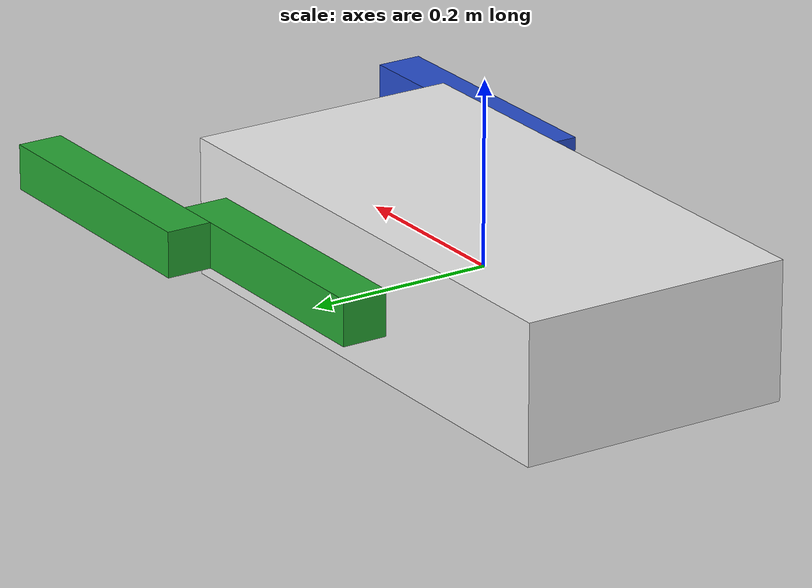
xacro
<?xml version="1.0"?>

<robot name="two_link" xmlns:xacro="http://ros.org/wiki/xacro">

  <!-- Property Definition: Referred to using ${property_name} -->
  <xacro:property name="box_name" value="robot" />
  <xacro:property name="mass" value="0.5" />

  <!-- Macro for the inertia of a box -->
  <xacro:macro name="box_inertia" params="x y z mass">
    <inertia ixx="${0.0833333 * mass * (y*y + z*z)}" ixy="0.0" ixz="0.0"
      iyy="${0.0833333 * mass * (x*x + z*z)}" iyz="0.0"
      izz="${0.0833333 * mass * (x*x + y*y)}" />
  </xacro:macro>

    <!-- Macro for the inertial properties of a box -->
  <xacro:macro name="box_inertial" params="x y z mass *origin">
    <inertial>
      <mass value="${mass}" />
      <xacro:insert_block name="origin" />
      <xacro:box_inertia x="${x}" y="${y}" z="${z}" mass="${mass}" />
    </inertial>
  </xacro:macro>

<!-- Link Definitions (Virtual Link) -->
<link name="${box_name}/base_link" />

<!-- Link Definitions (Actual Link) -->
<link name="${box_name}/box">
  <!-- Inertial block (uses box_inertial macro) -->
  <xacro:box_inertial x="0.6" y="0.3" z="0.15" mass="${mass}">
    <origin xyz="0 0 0" />
  </xacro:box_inertial>

  <!-- Visual block -->
  <visual>
    <origin xyz="0 0 0" rpy="0 0 0" />
    <geometry>
      <box size="0.6 0.3 0.15"/>
    </geometry>
  </visual>

  <!-- Collision block -->
  <collision>
    <origin xyz="0 0 0" rpy="0 0 0" />
    <geometry>
      <box size="0.6 0.3 0.15"/>
     </geometry>
  </collision>
</link>

  <!-- Gazebo specific properties for the box link -->
  <gazebo reference="${box_name}/box">
    <material>Gazebo/White</material>
      <mu1>5.01</mu1>
      <mu2>5.01</mu2>
  </gazebo>

  <!-- Joint between the virtual link and the actual link -->
  <joint name="${box_name}/base_joint" type="fixed">
    <origin xyz="0.0 0 0.0" rpy="0 0 0" />
    <parent link="${box_name}/base_link" />
    <child link="${box_name}/box" />
  </joint>

  <link name="${box_name}/arm1">
    <!-- Visual block -->
    <visual>
      <origin xyz="0.1 0 0" rpy="0 0 0" />
      <geometry>
        <box size="0.3 0.05 0.05"/>
      </geometry>
    </visual>
    <!-- Collision block -->
    <collision>
      <origin xyz="0.1 0 0" rpy="0 0 0" />
      <geometry>
        <box size="0.3 0.05 0.05"/>
      </geometry>
    </collision>
    <!-- Inertial block (uses box_inertial macro) -->
    <xacro:box_inertial x="0.3" y="0.05" z="0.05" mass="${mass}">
      <origin xyz="0.1 0 0" />
    </xacro:box_inertial>
  </link>
  <link name="${box_name}/arm11">
    <!-- Visual block -->
    <visual>
      <origin xyz="0.125 0 0" rpy="0 0 0" />
      <geometry>
        <box size="0.3 0.05 0.05"/>
      </geometry>
    </visual>
    <!-- Collision block -->
    <collision>
      <origin xyz="0.125 0 0" rpy="0 0 0" />
      <geometry>
        <box size="0.3 0.05 0.05"/>
      </geometry>
    </collision>
    <!-- Inertial block (uses box_inertial macro) -->
    <xacro:box_inertial x="0.3" y="0.05" z="0.05" mass="${mass}">
      <origin xyz="0.125 0 0" />
    </xacro:box_inertial>
  </link>

  <link name="${box_name}/arm2">
    <!-- Visual block -->
    <visual>
      <origin xyz="0.1 0 0" rpy="0 0 0" />
      <geometry>
        <box size="0.3 0.05 0.05"/>
      </geometry>
    </visual>
    <!-- Collision block -->
    <collision>
      <origin xyz="0.1 0 0" rpy="0 0 0" />
      <geometry>
        <box size="0.3 0.05 0.05"/>
      </geometry>
    </collision>
    <!-- Inertial block (uses box_inertial macro) -->
    <xacro:box_inertial x="0.3" y="0.05" z="0.05" mass="${mass}">
      <origin xyz="0.1 0 0" />
    </xacro:box_inertial>
  </link>
  <link name="${box_name}/arm22">
    <!-- Visual block -->
    <visual>
      <origin xyz="0.125 0 0" rpy="0 0 0" />
      <geometry>
        <box size="0.3 0.05 0.05"/>
      </geometry>
    </visual>
    <!-- Collision block -->
    <collision>
      <origin xyz="0.125 0 0" rpy="0 0 0" />
      <geometry>
        <box size="0.3 0.05 0.05"/>
      </geometry>
    </collision>
    <!-- Inertial block (uses box_inertial macro) -->
    <xacro:box_inertial x="0.3" y="0.05" z="0.05" mass="${mass}">
      <origin xyz="0.125 0 0" />
    </xacro:box_inertial>
  </link>

  <!-- Joint between the first link and the new link -->
  <joint name="${box_name}/link_joint1" type="revolute">
    <origin xyz="0.0 -0.175 -0.0" rpy="0 0 0" />
    <parent link="${box_name}/box" />
    <child link="${box_name}/arm1" />
    <axis xyz="0 -1 0" />
    <limit lower="${-pi}" upper="${pi}" effort="50.01" velocity="1.01" />
    <dynamics damping="0.0" friction="0.1"/>
  </joint>
  <!-- Joint between the first link and the new link -->
  <joint name="${box_name}/link_joint11" type="revolute">
    <origin xyz="0.225 -0.05 0.0" rpy="0 0 0" />
    <parent link="${box_name}/arm1" />
    <child link="${box_name}/arm11" />
    <axis xyz="0 -1 0" />
    <limit lower="${-pi}" upper="${pi}" effort="50.01" velocity="1.01" />
    <dynamics damping="0.0" friction="0.1"/>
  </joint>
  <!-- Gazebo specific properties for the arm link -->
  <gazebo reference="${box_name}/arm1">
    <material>Gazebo/Blue</material>
  </gazebo>
  <!-- Gazebo specific properties for the arm link -->
  <gazebo reference="${box_name}/arm11">
    <material>Gazebo/Blue</material>
  </gazebo>

    <!-- Joint between the first link and the new link -->
  <joint name="${box_name}/link_joint2" type="revolute">
    <origin xyz="0.0 0.175 0.0" rpy="0 0 0" />
    <parent link="${box_name}/box" />
    <child link="${box_name}/arm2" />
    <axis xyz="0 -1 0" />
    <limit lower="${-pi}" upper="${pi}" effort="50.01" velocity="1.01" />
    <dynamics damping="0.0" friction="0.1"/>
  </joint>
  <!-- Joint between the first link and the new link -->
  <joint name="${box_name}/link_joint22" type="revolute">
    <origin xyz="0.225 0.05 0.0" rpy="0 0 0" />
    <parent link="${box_name}/arm2" />
    <child link="${box_name}/arm22" />
    <axis xyz="0 -1 0" />
    <limit lower="${-pi}" upper="${pi}" effort="50.01" velocity="1.01" />
    <dynamics damping="0.0" friction="0.1"/>
  </joint>
  <!-- Gazebo specific properties for the arm link -->
  <gazebo reference="${box_name}/arm2">
    <material>Gazebo/Green</material>
  </gazebo>

  <!-- Gazebo specific properties for the arm link -->
  <gazebo reference="${box_name}/arm22">
    <material>Gazebo/Green</material>
  </gazebo>

  <!-- Interface the plugin with the movable joints -->
  <ros2_control name="GazeboSystem" type="system">
    <hardware>
      <plugin>gz_ros2_control/GazeboSimSystem</plugin>
    </hardware>
    <joint name="${box_name}/link_joint1">
      <command_interface name="position">
        <param name="min">-15</param>
        <param name="max">15</param>
      </command_interface>
      <state_interface name="position">
        <param name="initial_value">1.0</param>
      </state_interface>
      <state_interface name="velocity"/>
      <state_interface name="effort"/>
    </joint>

    <joint name="${box_name}/link_joint2">
      <command_interface name="position">
        <param name="min">-15</param>
        <param name="max">15</param>
      </command_interface>
      <state_interface name="position">
        <param name="initial_value">1.0</param>
      </state_interface>
      <state_interface name="velocity"/>
      <state_interface name="effort"/>
    </joint>

    <joint name="${box_name}/link_joint11">
      <command_interface name="position">
        <param name="min">-15</param>
        <param name="max">15</param>
      </command_interface>
      <state_interface name="position">
        <param name="initial_value">1.0</param>
      </state_interface>
      <state_interface name="velocity"/>
      <state_interface name="effort"/>
    </joint>

    <joint name="${box_name}/link_joint22">
      <command_interface name="position">
        <param name="min">-15</param>
        <param name="max">15</param>
      </command_interface>
      <state_interface name="position">
        <param name="initial_value">1.0</param>
      </state_interface>
      <state_interface name="velocity"/>
      <state_interface name="effort"/>
    </joint>
  </ros2_control>

  <!-- Gazebo plugin to enable control of joints -->
  <gazebo>
    <plugin filename="libgz_ros2_control-system.so" name="gz_ros2_control::GazeboSimROS2ControlPlugin">
      <parameters>/ros_ws/src/biorobotics_tutorial/models/config/four_links_config.yaml</parameters>
    </plugin>
  </gazebo>
</robot>
